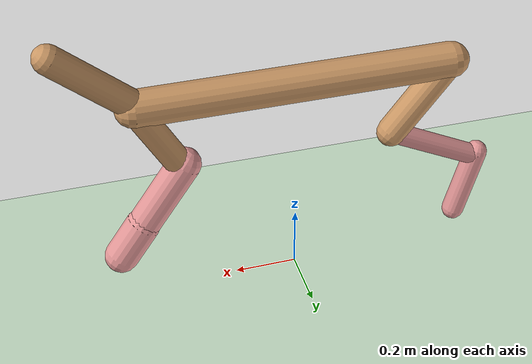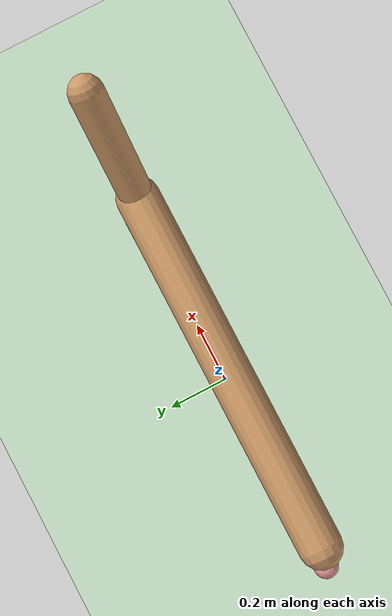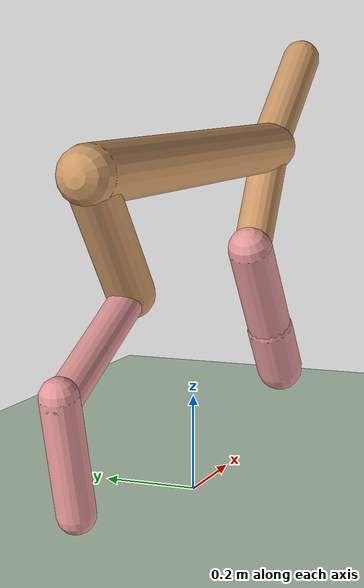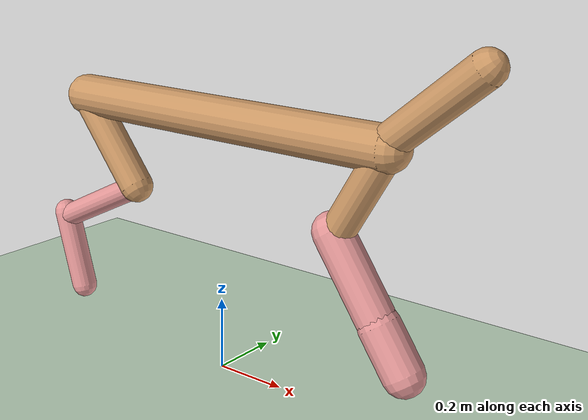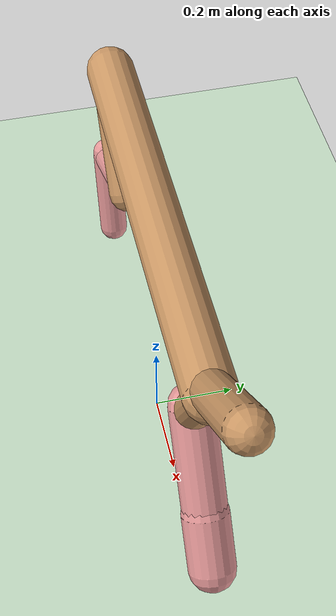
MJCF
<?xml version="1.0" encoding="utf-8"?>
<mujoco model="cheetah">
	<compiler angle="radian" coordinate="local" inertiafromgeom="true" settotalmass="14"></compiler>
	<default>
		<joint armature=".1" damping="0.008377251655121088" limited="true" solimplimit="0 .8 .03" solreflimit=".02 1" stiffness="6.035830697425341"></joint>
		<geom conaffinity="0" condim="3" contype="1" friction="0.2892950877330459 0.12716226764308738 0.11021450946052624" rgba="0.8 0.6 .4 1" solimp="0.0 0.8 0.01" solref="0.02 1"></geom>
		<motor ctrllimited="true" ctrlrange="-1 1"></motor>
	</default>
	<size nstack="300000" nuser_geom="1"></size>
	<option gravity="0 0 -9.81" timestep="0.01"></option>
	<asset>
		<texture builtin="gradient" height="100" rgb1="1 1 1" rgb2="0 0 0" type="skybox" width="100"></texture>
		<texture builtin="flat" height="1278" mark="cross" markrgb="1 1 1" name="texgeom" random="0.01" rgb1="0.8 0.6 0.4" rgb2="0.8 0.6 0.4" type="cube" width="127"></texture>
		<texture builtin="checker" height="100" name="texplane" rgb1="0 0 0" rgb2="0.8 0.8 0.8" type="2d" width="100"></texture>
		<material name="MatPlane" reflectance="0.5" shininess="1" specular="1" texrepeat="60 60" texture="texplane"></material>
		<material name="geom" texture="texgeom" texuniform="true"></material>
	</asset>
	<worldbody>
		<light cutoff="100" diffuse="1 1 1" dir="-0 0 -1.3" directional="true" exponent="1" pos="0 0 1.3" specular=".1 .1 .1"></light>
		<geom conaffinity="1" condim="3" material="MatPlane" name="floor" pos="0 0 0" rgba="0.8 0.9 0.8 1" size="29.834209483176892 44.62508034846819 38.45193563630998" type="plane"></geom>
		<body name="torso" pos="0 0 .7">
			<camera name="track" mode="trackcom" pos="0 -3 0.3" xyaxes="1 0 0 0 0 1"></camera>
			<joint armature="0" axis="1 0 0" damping="0.0" limited="false" name="rootx" pos="0 0 0" stiffness="0.0" type="slide"></joint>
			<joint armature="0" axis="0 0 1" damping="0.0" limited="false" name="rootz" pos="0 0 0" stiffness="0.0" type="slide"></joint>
			<joint armature="0" axis="0 1 0" damping="0.0" limited="false" name="rooty" pos="0 0 0" stiffness="0.0" type="hinge"></joint>
			<geom fromto="-.5 0 0 .5 0 0" name="torso" size="0.057818851232424535" type="capsule"></geom>
			<geom axisangle="0 1 0 .87" name="head" pos=".6 0 .1" size="0.0453585333869553 0.168859076772572" type="capsule"></geom>
			<body name="bthigh" pos="-.5 0 0">
				<joint axis="0 1 0" damping="4.841763914493697" name="bthigh" pos="0 0 0" range="-.52 1.05" stiffness="220.98914692927224" type="hinge"></joint>
				<geom axisangle="0 1 0 -3.8" name="bthigh" pos=".1 0 -.13" size="0.04683412437579401 0.1368689972224508" type="capsule"></geom>
				<body name="bshin" pos=".16 0 -.25">
					<joint axis="0 1 0" damping="4.17196764008376" name="bshin" pos="0 0 0" range="-.785 .785" stiffness="171.6783802439197" type="hinge"></joint>
					<geom axisangle="0 1 0 -2.03" name="bshin" pos="-.14 0 -.07" rgba="0.9 0.6 0.6 1" size="0.033863799447343655 0.1563613455394222" type="capsule"></geom>
					<body name="bfoot" pos="-.28 0 -.14">
						<joint axis="0 1 0" damping="2.3469535748070807" name="bfoot" pos="0 0 0" range="-.4 .785" stiffness="141.26824349908568" type="hinge"></joint>
						<geom axisangle="0 1 0 -.27" name="bfoot" pos=".03 0 -.097" rgba="0.9 0.6 0.6 1" size="0.036737523211158536 0.1163957329597607" type="capsule"></geom>
					</body>
				</body>
			</body>
			<body name="fthigh" pos=".5 0 0">
				<joint axis="0 1 0" damping="5.597362490593606" name="fthigh" pos="0 0 0" range="-1 .7" stiffness="208.67420595216433" type="hinge"></joint>
				<geom axisangle="0 1 0 .52" name="fthigh" pos="-.07 0 -.12" size="0.043331820570459145 0.11019003309584231" type="capsule"></geom>
				<body name="fshin" pos="-.14 0 -.24">
					<joint axis="0 1 0" damping="2.3429181611066325" name="fshin" pos="0 0 0" range="-1.2 .87" stiffness="155.93808467784447" type="hinge"></joint>
					<geom axisangle="0 1 0 -.6" name="fshin" pos=".065 0 -.09" rgba="0.9 0.6 0.6 1" size="0.05213264678233168 0.1240885901930766" type="capsule"></geom>
					<body name="ffoot" pos=".13 0 -.18">
						<joint axis="0 1 0" damping="1.9447231794902593" name="ffoot" pos="0 0 0" range="-.5 .5" stiffness="58.57034743842411" type="hinge"></joint>
						<geom axisangle="0 1 0 -.6" name="ffoot" pos=".045 0 -.07" rgba="0.9 0.6 0.6 1" size="0.05497923954387344 0.06772627098901741" type="capsule"></geom>
					</body>
				</body>
			</body>
		</body>
	</worldbody>
	<actuator>
		<motor gear="120" joint="bthigh" name="bthigh"></motor>
		<motor gear="90" joint="bshin" name="bshin"></motor>
		<motor gear="60" joint="bfoot" name="bfoot"></motor>
		<motor gear="120" joint="fthigh" name="fthigh"></motor>
		<motor gear="60" joint="fshin" name="fshin"></motor>
		<motor gear="30" joint="ffoot" name="ffoot"></motor>
	</actuator>
</mujoco>
